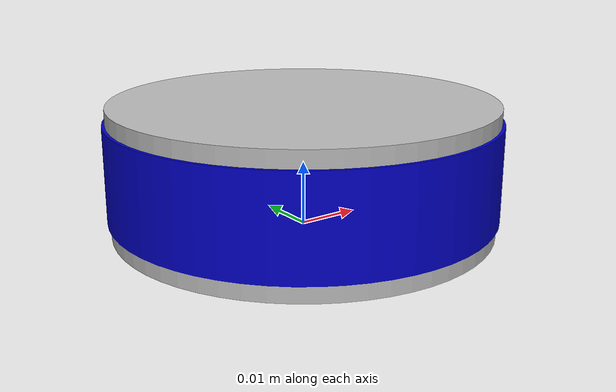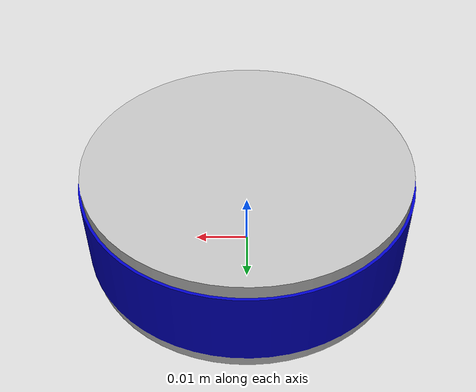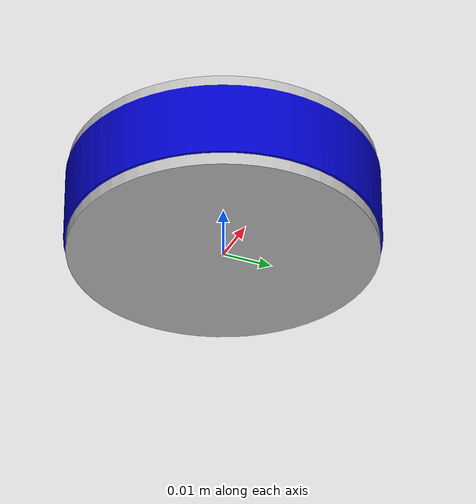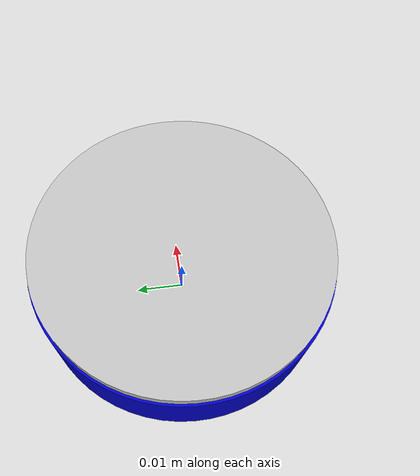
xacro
<?xml version="1.0"?>

<robot name="disc3">

  <link name="disc3">
    <inertial>
      <origin xyz="0 0 0" />
      <mass value="0.1" />
      <inertia  ixx="1" ixy="0"  ixz="0"  iyy="1"  iyz="0"  izz="1"/>
    </inertial>
    <visual>
      <origin xyz="0 0 0"/>
      <geometry>
        <mesh filename="package://tower_of_hanoi/meshes/disc_60.dae"/>
      </geometry>
    </visual>
    <collision>
      <origin xyz="0 0 0.008"/>
      <geometry>
        <cylinder length="0.022" radius="0.03"/>
      </geometry>
    </collision>
  </link>

  <gazebo reference="disc3">
    <mu1>10.0</mu1>
    <mu2>10.0</mu2>
    <maxVel>0.0</maxVel>
  </gazebo>

</robot>
